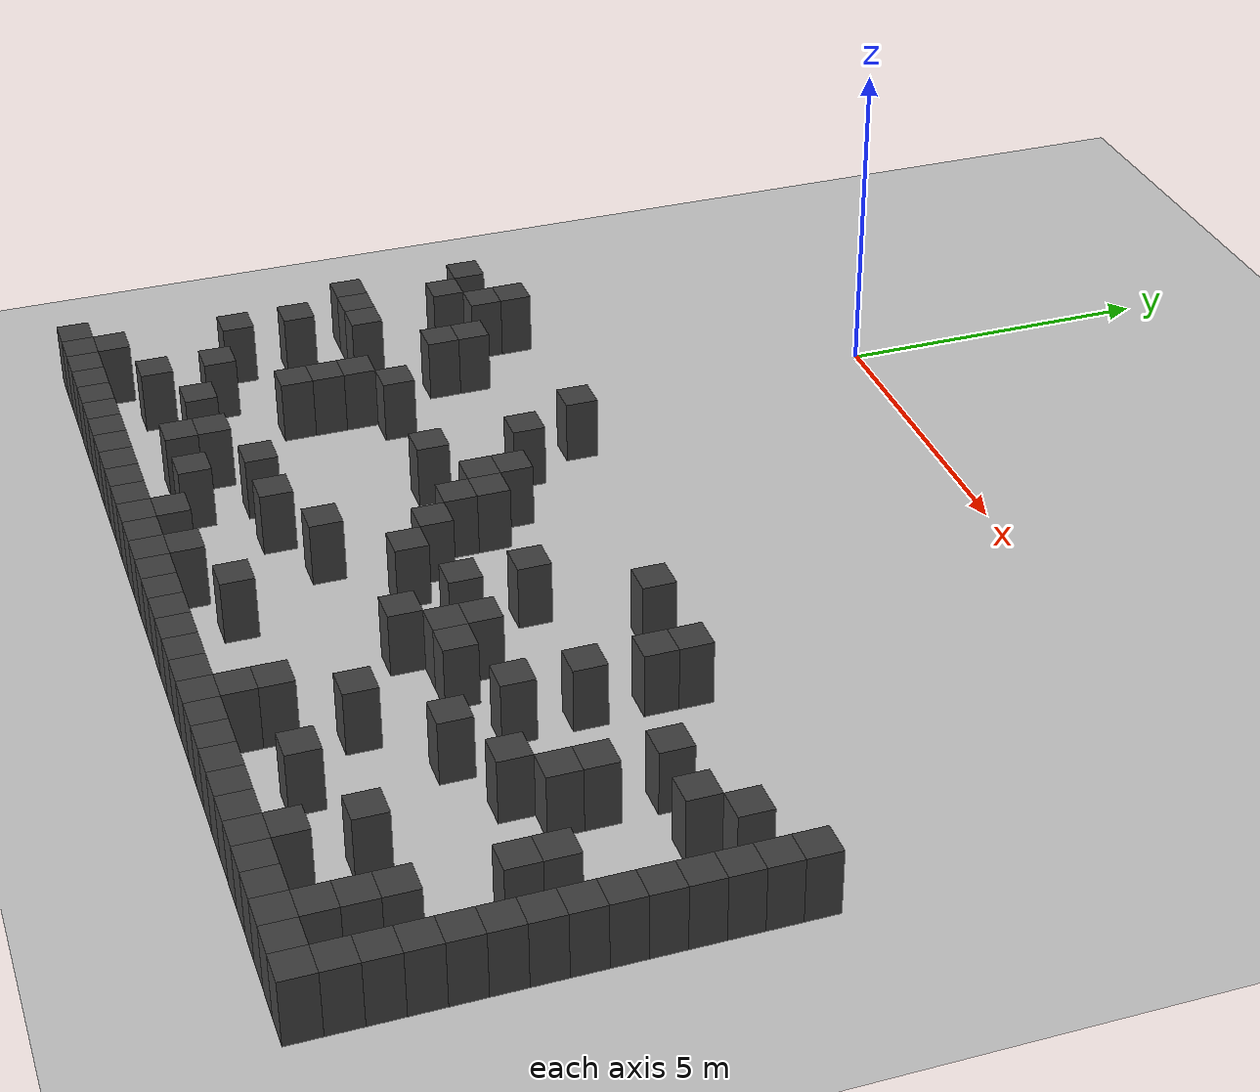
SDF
<sdf version="1.7">
 <world name="map_3158">
  <model name="ground_plane">
   <static>true</static>
   <link name="link">
    <collision name="collision">
     <geometry><plane><normal>0 0 1</normal><size>200 200</size></plane></geometry>
    </collision>
    <visual name="visual">
     <geometry><plane><normal>0 0 1</normal><size>200 200</size></plane></geometry>
     <material><ambient>0.8 0.8 0.8 1</ambient><diffuse>0.8 0.8 0.8 1</diffuse></material>
    </visual>
   </link>
  </model>
  <model name="maze_environment">
   <static>true</static>
   <link name="wall_370">
    <pose>-2.250 -5.250 0.500 0 0 0</pose>
    <collision name="col"><geometry><box><size>0.5 0.5 1.0</size></box></geometry></collision>
    <visual name="vis">
     <geometry><box><size>0.5 0.5 1.0</size></box></geometry>
     <material><ambient>0.15 0.15 0.15 1</ambient><diffuse>0.25 0.25 0.25 1</diffuse></material>
    </visual>
   </link>
   <link name="wall_371">
    <pose>1.250 -5.250 0.500 0 0 0</pose>
    <collision name="col"><geometry><box><size>0.5 0.5 1.0</size></box></geometry></collision>
    <visual name="vis">
     <geometry><box><size>0.5 0.5 1.0</size></box></geometry>
     <material><ambient>0.15 0.15 0.15 1</ambient><diffuse>0.25 0.25 0.25 1</diffuse></material>
    </visual>
   </link>
   <link name="wall_383">
    <pose>-3.250 -5.750 0.500 0 0 0</pose>
    <collision name="col"><geometry><box><size>0.5 0.5 1.0</size></box></geometry></collision>
    <visual name="vis">
     <geometry><box><size>0.5 0.5 1.0</size></box></geometry>
     <material><ambient>0.15 0.15 0.15 1</ambient><diffuse>0.25 0.25 0.25 1</diffuse></material>
    </visual>
   </link>
   <link name="wall_384">
    <pose>-2.250 -5.750 0.500 0 0 0</pose>
    <collision name="col"><geometry><box><size>0.5 0.5 1.0</size></box></geometry></collision>
    <visual name="vis">
     <geometry><box><size>0.5 0.5 1.0</size></box></geometry>
     <material><ambient>0.15 0.15 0.15 1</ambient><diffuse>0.25 0.25 0.25 1</diffuse></material>
    </visual>
   </link>
   <link name="wall_385">
    <pose>6.250 -5.750 0.500 0 0 0</pose>
    <collision name="col"><geometry><box><size>0.5 0.5 1.0</size></box></geometry></collision>
    <visual name="vis">
     <geometry><box><size>0.5 0.5 1.0</size></box></geometry>
     <material><ambient>0.15 0.15 0.15 1</ambient><diffuse>0.25 0.25 0.25 1</diffuse></material>
    </visual>
   </link>
   <link name="wall_386">
    <pose>7.750 -5.750 0.500 0 0 0</pose>
    <collision name="col"><geometry><box><size>0.5 0.5 1.0</size></box></geometry></collision>
    <visual name="vis">
     <geometry><box><size>0.5 0.5 1.0</size></box></geometry>
     <material><ambient>0.15 0.15 0.15 1</ambient><diffuse>0.25 0.25 0.25 1</diffuse></material>
    </visual>
   </link>
   <link name="wall_387">
    <pose>12.250 -5.750 0.500 0 0 0</pose>
    <collision name="col"><geometry><box><size>0.5 0.5 1.0</size></box></geometry></collision>
    <visual name="vis">
     <geometry><box><size>0.5 0.5 1.0</size></box></geometry>
     <material><ambient>0.15 0.15 0.15 1</ambient><diffuse>0.25 0.25 0.25 1</diffuse></material>
    </visual>
   </link>
   <link name="wall_391">
    <pose>-2.750 -6.250 0.500 0 0 0</pose>
    <collision name="col"><geometry><box><size>0.5 0.5 1.0</size></box></geometry></collision>
    <visual name="vis">
     <geometry><box><size>0.5 0.5 1.0</size></box></geometry>
     <material><ambient>0.15 0.15 0.15 1</ambient><diffuse>0.25 0.25 0.25 1</diffuse></material>
    </visual>
   </link>
   <link name="wall_392">
    <pose>-1.250 -6.250 0.500 0 0 0</pose>
    <collision name="col"><geometry><box><size>0.5 0.5 1.0</size></box></geometry></collision>
    <visual name="vis">
     <geometry><box><size>0.5 0.5 1.0</size></box></geometry>
     <material><ambient>0.15 0.15 0.15 1</ambient><diffuse>0.25 0.25 0.25 1</diffuse></material>
    </visual>
   </link>
   <link name="wall_393">
    <pose>1.750 -6.250 0.500 0 0 0</pose>
    <collision name="col"><geometry><box><size>0.5 0.5 1.0</size></box></geometry></collision>
    <visual name="vis">
     <geometry><box><size>0.5 0.5 1.0</size></box></geometry>
     <material><ambient>0.15 0.15 0.15 1</ambient><diffuse>0.25 0.25 0.25 1</diffuse></material>
    </visual>
   </link>
   <link name="wall_394">
    <pose>7.750 -6.250 0.500 0 0 0</pose>
    <collision name="col"><geometry><box><size>0.5 0.5 1.0</size></box></geometry></collision>
    <visual name="vis">
     <geometry><box><size>0.5 0.5 1.0</size></box></geometry>
     <material><ambient>0.15 0.15 0.15 1</ambient><diffuse>0.25 0.25 0.25 1</diffuse></material>
    </visual>
   </link>
   <link name="wall_395">
    <pose>11.250 -6.250 0.500 0 0 0</pose>
    <collision name="col"><geometry><box><size>0.5 0.5 1.0</size></box></geometry></collision>
    <visual name="vis">
     <geometry><box><size>0.5 0.5 1.0</size></box></geometry>
     <material><ambient>0.15 0.15 0.15 1</ambient><diffuse>0.25 0.25 0.25 1</diffuse></material>
    </visual>
   </link>
   <link name="wall_396">
    <pose>12.250 -6.250 0.500 0 0 0</pose>
    <collision name="col"><geometry><box><size>0.5 0.5 1.0</size></box></geometry></collision>
    <visual name="vis">
     <geometry><box><size>0.5 0.5 1.0</size></box></geometry>
     <material><ambient>0.15 0.15 0.15 1</ambient><diffuse>0.25 0.25 0.25 1</diffuse></material>
    </visual>
   </link>
   <link name="wall_403">
    <pose>-1.250 -6.750 0.500 0 0 0</pose>
    <collision name="col"><geometry><box><size>0.5 0.5 1.0</size></box></geometry></collision>
    <visual name="vis">
     <geometry><box><size>0.5 0.5 1.0</size></box></geometry>
     <material><ambient>0.15 0.15 0.15 1</ambient><diffuse>0.25 0.25 0.25 1</diffuse></material>
    </visual>
   </link>
   <link name="wall_404">
    <pose>2.750 -6.750 0.500 0 0 0</pose>
    <collision name="col"><geometry><box><size>0.5 0.5 1.0</size></box></geometry></collision>
    <visual name="vis">
     <geometry><box><size>0.5 0.5 1.0</size></box></geometry>
     <material><ambient>0.15 0.15 0.15 1</ambient><diffuse>0.25 0.25 0.25 1</diffuse></material>
    </visual>
   </link>
   <link name="wall_405">
    <pose>9.750 -6.750 0.500 0 0 0</pose>
    <collision name="col"><geometry><box><size>0.5 0.5 1.0</size></box></geometry></collision>
    <visual name="vis">
     <geometry><box><size>0.5 0.5 1.0</size></box></geometry>
     <material><ambient>0.15 0.15 0.15 1</ambient><diffuse>0.25 0.25 0.25 1</diffuse></material>
    </visual>
   </link>
   <link name="wall_406">
    <pose>10.750 -6.750 0.500 0 0 0</pose>
    <collision name="col"><geometry><box><size>0.5 0.5 1.0</size></box></geometry></collision>
    <visual name="vis">
     <geometry><box><size>0.5 0.5 1.0</size></box></geometry>
     <material><ambient>0.15 0.15 0.15 1</ambient><diffuse>0.25 0.25 0.25 1</diffuse></material>
    </visual>
   </link>
   <link name="wall_407">
    <pose>12.250 -6.750 0.500 0 0 0</pose>
    <collision name="col"><geometry><box><size>0.5 0.5 1.0</size></box></geometry></collision>
    <visual name="vis">
     <geometry><box><size>0.5 0.5 1.0</size></box></geometry>
     <material><ambient>0.15 0.15 0.15 1</ambient><diffuse>0.25 0.25 0.25 1</diffuse></material>
    </visual>
   </link>
   <link name="wall_415">
    <pose>2.750 -7.250 0.500 0 0 0</pose>
    <collision name="col"><geometry><box><size>0.5 0.5 1.0</size></box></geometry></collision>
    <visual name="vis">
     <geometry><box><size>0.5 0.5 1.0</size></box></geometry>
     <material><ambient>0.15 0.15 0.15 1</ambient><diffuse>0.25 0.25 0.25 1</diffuse></material>
    </visual>
   </link>
   <link name="wall_416">
    <pose>3.250 -7.250 0.500 0 0 0</pose>
    <collision name="col"><geometry><box><size>0.5 0.5 1.0</size></box></geometry></collision>
    <visual name="vis">
     <geometry><box><size>0.5 0.5 1.0</size></box></geometry>
     <material><ambient>0.15 0.15 0.15 1</ambient><diffuse>0.25 0.25 0.25 1</diffuse></material>
    </visual>
   </link>
   <link name="wall_417">
    <pose>5.250 -7.250 0.500 0 0 0</pose>
    <collision name="col"><geometry><box><size>0.5 0.5 1.0</size></box></geometry></collision>
    <visual name="vis">
     <geometry><box><size>0.5 0.5 1.0</size></box></geometry>
     <material><ambient>0.15 0.15 0.15 1</ambient><diffuse>0.25 0.25 0.25 1</diffuse></material>
    </visual>
   </link>
   <link name="wall_418">
    <pose>7.750 -7.250 0.500 0 0 0</pose>
    <collision name="col"><geometry><box><size>0.5 0.5 1.0</size></box></geometry></collision>
    <visual name="vis">
     <geometry><box><size>0.5 0.5 1.0</size></box></geometry>
     <material><ambient>0.15 0.15 0.15 1</ambient><diffuse>0.25 0.25 0.25 1</diffuse></material>
    </visual>
   </link>
   <link name="wall_419">
    <pose>12.250 -7.250 0.500 0 0 0</pose>
    <collision name="col"><geometry><box><size>0.5 0.5 1.0</size></box></geometry></collision>
    <visual name="vis">
     <geometry><box><size>0.5 0.5 1.0</size></box></geometry>
     <material><ambient>0.15 0.15 0.15 1</ambient><diffuse>0.25 0.25 0.25 1</diffuse></material>
    </visual>
   </link>
   <link name="wall_425">
    <pose>-3.250 -7.750 0.500 0 0 0</pose>
    <collision name="col"><geometry><box><size>0.5 0.5 1.0</size></box></geometry></collision>
    <visual name="vis">
     <geometry><box><size>0.5 0.5 1.0</size></box></geometry>
     <material><ambient>0.15 0.15 0.15 1</ambient><diffuse>0.25 0.25 0.25 1</diffuse></material>
    </visual>
   </link>
   <link name="wall_426">
    <pose>-2.750 -7.750 0.500 0 0 0</pose>
    <collision name="col"><geometry><box><size>0.5 0.5 1.0</size></box></geometry></collision>
    <visual name="vis">
     <geometry><box><size>0.5 0.5 1.0</size></box></geometry>
     <material><ambient>0.15 0.15 0.15 1</ambient><diffuse>0.25 0.25 0.25 1</diffuse></material>
    </visual>
   </link>
   <link name="wall_427">
    <pose>-2.250 -7.750 0.500 0 0 0</pose>
    <collision name="col"><geometry><box><size>0.5 0.5 1.0</size></box></geometry></collision>
    <visual name="vis">
     <geometry><box><size>0.5 0.5 1.0</size></box></geometry>
     <material><ambient>0.15 0.15 0.15 1</ambient><diffuse>0.25 0.25 0.25 1</diffuse></material>
    </visual>
   </link>
   <link name="wall_428">
    <pose>-0.250 -7.750 0.500 0 0 0</pose>
    <collision name="col"><geometry><box><size>0.5 0.5 1.0</size></box></geometry></collision>
    <visual name="vis">
     <geometry><box><size>0.5 0.5 1.0</size></box></geometry>
     <material><ambient>0.15 0.15 0.15 1</ambient><diffuse>0.25 0.25 0.25 1</diffuse></material>
    </visual>
   </link>
   <link name="wall_429">
    <pose>1.750 -7.750 0.500 0 0 0</pose>
    <collision name="col"><geometry><box><size>0.5 0.5 1.0</size></box></geometry></collision>
    <visual name="vis">
     <geometry><box><size>0.5 0.5 1.0</size></box></geometry>
     <material><ambient>0.15 0.15 0.15 1</ambient><diffuse>0.25 0.25 0.25 1</diffuse></material>
    </visual>
   </link>
   <link name="wall_430">
    <pose>3.250 -7.750 0.500 0 0 0</pose>
    <collision name="col"><geometry><box><size>0.5 0.5 1.0</size></box></geometry></collision>
    <visual name="vis">
     <geometry><box><size>0.5 0.5 1.0</size></box></geometry>
     <material><ambient>0.15 0.15 0.15 1</ambient><diffuse>0.25 0.25 0.25 1</diffuse></material>
    </visual>
   </link>
   <link name="wall_431">
    <pose>9.750 -7.750 0.500 0 0 0</pose>
    <collision name="col"><geometry><box><size>0.5 0.5 1.0</size></box></geometry></collision>
    <visual name="vis">
     <geometry><box><size>0.5 0.5 1.0</size></box></geometry>
     <material><ambient>0.15 0.15 0.15 1</ambient><diffuse>0.25 0.25 0.25 1</diffuse></material>
    </visual>
   </link>
   <link name="wall_432">
    <pose>12.250 -7.750 0.500 0 0 0</pose>
    <collision name="col"><geometry><box><size>0.5 0.5 1.0</size></box></geometry></collision>
    <visual name="vis">
     <geometry><box><size>0.5 0.5 1.0</size></box></geometry>
     <material><ambient>0.15 0.15 0.15 1</ambient><diffuse>0.25 0.25 0.25 1</diffuse></material>
    </visual>
   </link>
   <link name="wall_435">
    <pose>-0.750 -8.250 0.500 0 0 0</pose>
    <collision name="col"><geometry><box><size>0.5 0.5 1.0</size></box></geometry></collision>
    <visual name="vis">
     <geometry><box><size>0.5 0.5 1.0</size></box></geometry>
     <material><ambient>0.15 0.15 0.15 1</ambient><diffuse>0.25 0.25 0.25 1</diffuse></material>
    </visual>
   </link>
   <link name="wall_436">
    <pose>3.750 -8.250 0.500 0 0 0</pose>
    <collision name="col"><geometry><box><size>0.5 0.5 1.0</size></box></geometry></collision>
    <visual name="vis">
     <geometry><box><size>0.5 0.5 1.0</size></box></geometry>
     <material><ambient>0.15 0.15 0.15 1</ambient><diffuse>0.25 0.25 0.25 1</diffuse></material>
    </visual>
   </link>
   <link name="wall_437">
    <pose>5.250 -8.250 0.500 0 0 0</pose>
    <collision name="col"><geometry><box><size>0.5 0.5 1.0</size></box></geometry></collision>
    <visual name="vis">
     <geometry><box><size>0.5 0.5 1.0</size></box></geometry>
     <material><ambient>0.15 0.15 0.15 1</ambient><diffuse>0.25 0.25 0.25 1</diffuse></material>
    </visual>
   </link>
   <link name="wall_438">
    <pose>6.250 -8.250 0.500 0 0 0</pose>
    <collision name="col"><geometry><box><size>0.5 0.5 1.0</size></box></geometry></collision>
    <visual name="vis">
     <geometry><box><size>0.5 0.5 1.0</size></box></geometry>
     <material><ambient>0.15 0.15 0.15 1</ambient><diffuse>0.25 0.25 0.25 1</diffuse></material>
    </visual>
   </link>
   <link name="wall_439">
    <pose>7.750 -8.250 0.500 0 0 0</pose>
    <collision name="col"><geometry><box><size>0.5 0.5 1.0</size></box></geometry></collision>
    <visual name="vis">
     <geometry><box><size>0.5 0.5 1.0</size></box></geometry>
     <material><ambient>0.15 0.15 0.15 1</ambient><diffuse>0.25 0.25 0.25 1</diffuse></material>
    </visual>
   </link>
   <link name="wall_440">
    <pose>9.750 -8.250 0.500 0 0 0</pose>
    <collision name="col"><geometry><box><size>0.5 0.5 1.0</size></box></geometry></collision>
    <visual name="vis">
     <geometry><box><size>0.5 0.5 1.0</size></box></geometry>
     <material><ambient>0.15 0.15 0.15 1</ambient><diffuse>0.25 0.25 0.25 1</diffuse></material>
    </visual>
   </link>
   <link name="wall_441">
    <pose>12.250 -8.250 0.500 0 0 0</pose>
    <collision name="col"><geometry><box><size>0.5 0.5 1.0</size></box></geometry></collision>
    <visual name="vis">
     <geometry><box><size>0.5 0.5 1.0</size></box></geometry>
     <material><ambient>0.15 0.15 0.15 1</ambient><diffuse>0.25 0.25 0.25 1</diffuse></material>
    </visual>
   </link>
   <link name="wall_447">
    <pose>-2.750 -8.750 0.500 0 0 0</pose>
    <collision name="col"><geometry><box><size>0.5 0.5 1.0</size></box></geometry></collision>
    <visual name="vis">
     <geometry><box><size>0.5 0.5 1.0</size></box></geometry>
     <material><ambient>0.15 0.15 0.15 1</ambient><diffuse>0.25 0.25 0.25 1</diffuse></material>
    </visual>
   </link>
   <link name="wall_448">
    <pose>-0.750 -8.750 0.500 0 0 0</pose>
    <collision name="col"><geometry><box><size>0.5 0.5 1.0</size></box></geometry></collision>
    <visual name="vis">
     <geometry><box><size>0.5 0.5 1.0</size></box></geometry>
     <material><ambient>0.15 0.15 0.15 1</ambient><diffuse>0.25 0.25 0.25 1</diffuse></material>
    </visual>
   </link>
   <link name="wall_449">
    <pose>4.250 -8.750 0.500 0 0 0</pose>
    <collision name="col"><geometry><box><size>0.5 0.5 1.0</size></box></geometry></collision>
    <visual name="vis">
     <geometry><box><size>0.5 0.5 1.0</size></box></geometry>
     <material><ambient>0.15 0.15 0.15 1</ambient><diffuse>0.25 0.25 0.25 1</diffuse></material>
    </visual>
   </link>
   <link name="wall_450">
    <pose>6.250 -8.750 0.500 0 0 0</pose>
    <collision name="col"><geometry><box><size>0.5 0.5 1.0</size></box></geometry></collision>
    <visual name="vis">
     <geometry><box><size>0.5 0.5 1.0</size></box></geometry>
     <material><ambient>0.15 0.15 0.15 1</ambient><diffuse>0.25 0.25 0.25 1</diffuse></material>
    </visual>
   </link>
   <link name="wall_451">
    <pose>6.750 -8.750 0.500 0 0 0</pose>
    <collision name="col"><geometry><box><size>0.5 0.5 1.0</size></box></geometry></collision>
    <visual name="vis">
     <geometry><box><size>0.5 0.5 1.0</size></box></geometry>
     <material><ambient>0.15 0.15 0.15 1</ambient><diffuse>0.25 0.25 0.25 1</diffuse></material>
    </visual>
   </link>
   <link name="wall_452">
    <pose>9.250 -8.750 0.500 0 0 0</pose>
    <collision name="col"><geometry><box><size>0.5 0.5 1.0</size></box></geometry></collision>
    <visual name="vis">
     <geometry><box><size>0.5 0.5 1.0</size></box></geometry>
     <material><ambient>0.15 0.15 0.15 1</ambient><diffuse>0.25 0.25 0.25 1</diffuse></material>
    </visual>
   </link>
   <link name="wall_453">
    <pose>11.250 -8.750 0.500 0 0 0</pose>
    <collision name="col"><geometry><box><size>0.5 0.5 1.0</size></box></geometry></collision>
    <visual name="vis">
     <geometry><box><size>0.5 0.5 1.0</size></box></geometry>
     <material><ambient>0.15 0.15 0.15 1</ambient><diffuse>0.25 0.25 0.25 1</diffuse></material>
    </visual>
   </link>
   <link name="wall_454">
    <pose>12.250 -8.750 0.500 0 0 0</pose>
    <collision name="col"><geometry><box><size>0.5 0.5 1.0</size></box></geometry></collision>
    <visual name="vis">
     <geometry><box><size>0.5 0.5 1.0</size></box></geometry>
     <material><ambient>0.15 0.15 0.15 1</ambient><diffuse>0.25 0.25 0.25 1</diffuse></material>
    </visual>
   </link>
   <link name="wall_459">
    <pose>-0.750 -9.250 0.500 0 0 0</pose>
    <collision name="col"><geometry><box><size>0.5 0.5 1.0</size></box></geometry></collision>
    <visual name="vis">
     <geometry><box><size>0.5 0.5 1.0</size></box></geometry>
     <material><ambient>0.15 0.15 0.15 1</ambient><diffuse>0.25 0.25 0.25 1</diffuse></material>
    </visual>
   </link>
   <link name="wall_460">
    <pose>5.750 -9.250 0.500 0 0 0</pose>
    <collision name="col"><geometry><box><size>0.5 0.5 1.0</size></box></geometry></collision>
    <visual name="vis">
     <geometry><box><size>0.5 0.5 1.0</size></box></geometry>
     <material><ambient>0.15 0.15 0.15 1</ambient><diffuse>0.25 0.25 0.25 1</diffuse></material>
    </visual>
   </link>
   <link name="wall_461">
    <pose>8.250 -9.250 0.500 0 0 0</pose>
    <collision name="col"><geometry><box><size>0.5 0.5 1.0</size></box></geometry></collision>
    <visual name="vis">
     <geometry><box><size>0.5 0.5 1.0</size></box></geometry>
     <material><ambient>0.15 0.15 0.15 1</ambient><diffuse>0.25 0.25 0.25 1</diffuse></material>
    </visual>
   </link>
   <link name="wall_462">
    <pose>11.250 -9.250 0.500 0 0 0</pose>
    <collision name="col"><geometry><box><size>0.5 0.5 1.0</size></box></geometry></collision>
    <visual name="vis">
     <geometry><box><size>0.5 0.5 1.0</size></box></geometry>
     <material><ambient>0.15 0.15 0.15 1</ambient><diffuse>0.25 0.25 0.25 1</diffuse></material>
    </visual>
   </link>
   <link name="wall_463">
    <pose>12.250 -9.250 0.500 0 0 0</pose>
    <collision name="col"><geometry><box><size>0.5 0.5 1.0</size></box></geometry></collision>
    <visual name="vis">
     <geometry><box><size>0.5 0.5 1.0</size></box></geometry>
     <material><ambient>0.15 0.15 0.15 1</ambient><diffuse>0.25 0.25 0.25 1</diffuse></material>
    </visual>
   </link>
   <link name="wall_468">
    <pose>-2.750 -9.750 0.500 0 0 0</pose>
    <collision name="col"><geometry><box><size>0.5 0.5 1.0</size></box></geometry></collision>
    <visual name="vis">
     <geometry><box><size>0.5 0.5 1.0</size></box></geometry>
     <material><ambient>0.15 0.15 0.15 1</ambient><diffuse>0.25 0.25 0.25 1</diffuse></material>
    </visual>
   </link>
   <link name="wall_469">
    <pose>3.250 -9.750 0.500 0 0 0</pose>
    <collision name="col"><geometry><box><size>0.5 0.5 1.0</size></box></geometry></collision>
    <visual name="vis">
     <geometry><box><size>0.5 0.5 1.0</size></box></geometry>
     <material><ambient>0.15 0.15 0.15 1</ambient><diffuse>0.25 0.25 0.25 1</diffuse></material>
    </visual>
   </link>
   <link name="wall_470">
    <pose>12.250 -9.750 0.500 0 0 0</pose>
    <collision name="col"><geometry><box><size>0.5 0.5 1.0</size></box></geometry></collision>
    <visual name="vis">
     <geometry><box><size>0.5 0.5 1.0</size></box></geometry>
     <material><ambient>0.15 0.15 0.15 1</ambient><diffuse>0.25 0.25 0.25 1</diffuse></material>
    </visual>
   </link>
   <link name="wall_476">
    <pose>-1.750 -10.250 0.500 0 0 0</pose>
    <collision name="col"><geometry><box><size>0.5 0.5 1.0</size></box></geometry></collision>
    <visual name="vis">
     <geometry><box><size>0.5 0.5 1.0</size></box></geometry>
     <material><ambient>0.15 0.15 0.15 1</ambient><diffuse>0.25 0.25 0.25 1</diffuse></material>
    </visual>
   </link>
   <link name="wall_477">
    <pose>1.250 -10.250 0.500 0 0 0</pose>
    <collision name="col"><geometry><box><size>0.5 0.5 1.0</size></box></geometry></collision>
    <visual name="vis">
     <geometry><box><size>0.5 0.5 1.0</size></box></geometry>
     <material><ambient>0.15 0.15 0.15 1</ambient><diffuse>0.25 0.25 0.25 1</diffuse></material>
    </visual>
   </link>
   <link name="wall_478">
    <pose>2.250 -10.250 0.500 0 0 0</pose>
    <collision name="col"><geometry><box><size>0.5 0.5 1.0</size></box></geometry></collision>
    <visual name="vis">
     <geometry><box><size>0.5 0.5 1.0</size></box></geometry>
     <material><ambient>0.15 0.15 0.15 1</ambient><diffuse>0.25 0.25 0.25 1</diffuse></material>
    </visual>
   </link>
   <link name="wall_479">
    <pose>7.250 -10.250 0.500 0 0 0</pose>
    <collision name="col"><geometry><box><size>0.5 0.5 1.0</size></box></geometry></collision>
    <visual name="vis">
     <geometry><box><size>0.5 0.5 1.0</size></box></geometry>
     <material><ambient>0.15 0.15 0.15 1</ambient><diffuse>0.25 0.25 0.25 1</diffuse></material>
    </visual>
   </link>
   <link name="wall_480">
    <pose>12.250 -10.250 0.500 0 0 0</pose>
    <collision name="col"><geometry><box><size>0.5 0.5 1.0</size></box></geometry></collision>
    <visual name="vis">
     <geometry><box><size>0.5 0.5 1.0</size></box></geometry>
     <material><ambient>0.15 0.15 0.15 1</ambient><diffuse>0.25 0.25 0.25 1</diffuse></material>
    </visual>
   </link>
   <link name="wall_486">
    <pose>-0.750 -10.750 0.500 0 0 0</pose>
    <collision name="col"><geometry><box><size>0.5 0.5 1.0</size></box></geometry></collision>
    <visual name="vis">
     <geometry><box><size>0.5 0.5 1.0</size></box></geometry>
     <material><ambient>0.15 0.15 0.15 1</ambient><diffuse>0.25 0.25 0.25 1</diffuse></material>
    </visual>
   </link>
   <link name="wall_487">
    <pose>0.250 -10.750 0.500 0 0 0</pose>
    <collision name="col"><geometry><box><size>0.5 0.5 1.0</size></box></geometry></collision>
    <visual name="vis">
     <geometry><box><size>0.5 0.5 1.0</size></box></geometry>
     <material><ambient>0.15 0.15 0.15 1</ambient><diffuse>0.25 0.25 0.25 1</diffuse></material>
    </visual>
   </link>
   <link name="wall_488">
    <pose>9.750 -10.750 0.500 0 0 0</pose>
    <collision name="col"><geometry><box><size>0.5 0.5 1.0</size></box></geometry></collision>
    <visual name="vis">
     <geometry><box><size>0.5 0.5 1.0</size></box></geometry>
     <material><ambient>0.15 0.15 0.15 1</ambient><diffuse>0.25 0.25 0.25 1</diffuse></material>
    </visual>
   </link>
   <link name="wall_489">
    <pose>11.250 -10.750 0.500 0 0 0</pose>
    <collision name="col"><geometry><box><size>0.5 0.5 1.0</size></box></geometry></collision>
    <visual name="vis">
     <geometry><box><size>0.5 0.5 1.0</size></box></geometry>
     <material><ambient>0.15 0.15 0.15 1</ambient><diffuse>0.25 0.25 0.25 1</diffuse></material>
    </visual>
   </link>
   <link name="wall_490">
    <pose>12.250 -10.750 0.500 0 0 0</pose>
    <collision name="col"><geometry><box><size>0.5 0.5 1.0</size></box></geometry></collision>
    <visual name="vis">
     <geometry><box><size>0.5 0.5 1.0</size></box></geometry>
     <material><ambient>0.15 0.15 0.15 1</ambient><diffuse>0.25 0.25 0.25 1</diffuse></material>
    </visual>
   </link>
   <link name="wall_494">
    <pose>-1.750 -11.250 0.500 0 0 0</pose>
    <collision name="col"><geometry><box><size>0.5 0.5 1.0</size></box></geometry></collision>
    <visual name="vis">
     <geometry><box><size>0.5 0.5 1.0</size></box></geometry>
     <material><ambient>0.15 0.15 0.15 1</ambient><diffuse>0.25 0.25 0.25 1</diffuse></material>
    </visual>
   </link>
   <link name="wall_495">
    <pose>0.250 -11.250 0.500 0 0 0</pose>
    <collision name="col"><geometry><box><size>0.5 0.5 1.0</size></box></geometry></collision>
    <visual name="vis">
     <geometry><box><size>0.5 0.5 1.0</size></box></geometry>
     <material><ambient>0.15 0.15 0.15 1</ambient><diffuse>0.25 0.25 0.25 1</diffuse></material>
    </visual>
   </link>
   <link name="wall_496">
    <pose>1.250 -11.250 0.500 0 0 0</pose>
    <collision name="col"><geometry><box><size>0.5 0.5 1.0</size></box></geometry></collision>
    <visual name="vis">
     <geometry><box><size>0.5 0.5 1.0</size></box></geometry>
     <material><ambient>0.15 0.15 0.15 1</ambient><diffuse>0.25 0.25 0.25 1</diffuse></material>
    </visual>
   </link>
   <link name="wall_497">
    <pose>4.250 -11.250 0.500 0 0 0</pose>
    <collision name="col"><geometry><box><size>0.5 0.5 1.0</size></box></geometry></collision>
    <visual name="vis">
     <geometry><box><size>0.5 0.5 1.0</size></box></geometry>
     <material><ambient>0.15 0.15 0.15 1</ambient><diffuse>0.25 0.25 0.25 1</diffuse></material>
    </visual>
   </link>
   <link name="wall_498">
    <pose>6.750 -11.250 0.500 0 0 0</pose>
    <collision name="col"><geometry><box><size>0.5 0.5 1.0</size></box></geometry></collision>
    <visual name="vis">
     <geometry><box><size>0.5 0.5 1.0</size></box></geometry>
     <material><ambient>0.15 0.15 0.15 1</ambient><diffuse>0.25 0.25 0.25 1</diffuse></material>
    </visual>
   </link>
   <link name="wall_499">
    <pose>8.250 -11.250 0.500 0 0 0</pose>
    <collision name="col"><geometry><box><size>0.5 0.5 1.0</size></box></geometry></collision>
    <visual name="vis">
     <geometry><box><size>0.5 0.5 1.0</size></box></geometry>
     <material><ambient>0.15 0.15 0.15 1</ambient><diffuse>0.25 0.25 0.25 1</diffuse></material>
    </visual>
   </link>
   <link name="wall_500">
    <pose>11.250 -11.250 0.500 0 0 0</pose>
    <collision name="col"><geometry><box><size>0.5 0.5 1.0</size></box></geometry></collision>
    <visual name="vis">
     <geometry><box><size>0.5 0.5 1.0</size></box></geometry>
     <material><ambient>0.15 0.15 0.15 1</ambient><diffuse>0.25 0.25 0.25 1</diffuse></material>
    </visual>
   </link>
   <link name="wall_501">
    <pose>12.250 -11.250 0.500 0 0 0</pose>
    <collision name="col"><geometry><box><size>0.5 0.5 1.0</size></box></geometry></collision>
    <visual name="vis">
     <geometry><box><size>0.5 0.5 1.0</size></box></geometry>
     <material><ambient>0.15 0.15 0.15 1</ambient><diffuse>0.25 0.25 0.25 1</diffuse></material>
    </visual>
   </link>
   <link name="wall_504">
    <pose>-2.750 -11.750 0.500 0 0 0</pose>
    <collision name="col"><geometry><box><size>0.5 0.5 1.0</size></box></geometry></collision>
    <visual name="vis">
     <geometry><box><size>0.5 0.5 1.0</size></box></geometry>
     <material><ambient>0.15 0.15 0.15 1</ambient><diffuse>0.25 0.25 0.25 1</diffuse></material>
    </visual>
   </link>
   <link name="wall_505">
    <pose>2.250 -11.750 0.500 0 0 0</pose>
    <collision name="col"><geometry><box><size>0.5 0.5 1.0</size></box></geometry></collision>
    <visual name="vis">
     <geometry><box><size>0.5 0.5 1.0</size></box></geometry>
     <material><ambient>0.15 0.15 0.15 1</ambient><diffuse>0.25 0.25 0.25 1</diffuse></material>
    </visual>
   </link>
   <link name="wall_506">
    <pose>3.250 -11.750 0.500 0 0 0</pose>
    <collision name="col"><geometry><box><size>0.5 0.5 1.0</size></box></geometry></collision>
    <visual name="vis">
     <geometry><box><size>0.5 0.5 1.0</size></box></geometry>
     <material><ambient>0.15 0.15 0.15 1</ambient><diffuse>0.25 0.25 0.25 1</diffuse></material>
    </visual>
   </link>
   <link name="wall_507">
    <pose>6.750 -11.750 0.500 0 0 0</pose>
    <collision name="col"><geometry><box><size>0.5 0.5 1.0</size></box></geometry></collision>
    <visual name="vis">
     <geometry><box><size>0.5 0.5 1.0</size></box></geometry>
     <material><ambient>0.15 0.15 0.15 1</ambient><diffuse>0.25 0.25 0.25 1</diffuse></material>
    </visual>
   </link>
   <link name="wall_508">
    <pose>9.750 -11.750 0.500 0 0 0</pose>
    <collision name="col"><geometry><box><size>0.5 0.5 1.0</size></box></geometry></collision>
    <visual name="vis">
     <geometry><box><size>0.5 0.5 1.0</size></box></geometry>
     <material><ambient>0.15 0.15 0.15 1</ambient><diffuse>0.25 0.25 0.25 1</diffuse></material>
    </visual>
   </link>
   <link name="wall_509">
    <pose>11.250 -11.750 0.500 0 0 0</pose>
    <collision name="col"><geometry><box><size>0.5 0.5 1.0</size></box></geometry></collision>
    <visual name="vis">
     <geometry><box><size>0.5 0.5 1.0</size></box></geometry>
     <material><ambient>0.15 0.15 0.15 1</ambient><diffuse>0.25 0.25 0.25 1</diffuse></material>
    </visual>
   </link>
   <link name="wall_510">
    <pose>12.250 -11.750 0.500 0 0 0</pose>
    <collision name="col"><geometry><box><size>0.5 0.5 1.0</size></box></geometry></collision>
    <visual name="vis">
     <geometry><box><size>0.5 0.5 1.0</size></box></geometry>
     <material><ambient>0.15 0.15 0.15 1</ambient><diffuse>0.25 0.25 0.25 1</diffuse></material>
    </visual>
   </link>
   <link name="wall_529">
    <pose>-3.250 -12.250 0.500 0 0 0</pose>
    <collision name="col"><geometry><box><size>0.5 0.5 1.0</size></box></geometry></collision>
    <visual name="vis">
     <geometry><box><size>0.5 0.5 1.0</size></box></geometry>
     <material><ambient>0.15 0.15 0.15 1</ambient><diffuse>0.25 0.25 0.25 1</diffuse></material>
    </visual>
   </link>
   <link name="wall_530">
    <pose>-2.750 -12.250 0.500 0 0 0</pose>
    <collision name="col"><geometry><box><size>0.5 0.5 1.0</size></box></geometry></collision>
    <visual name="vis">
     <geometry><box><size>0.5 0.5 1.0</size></box></geometry>
     <material><ambient>0.15 0.15 0.15 1</ambient><diffuse>0.25 0.25 0.25 1</diffuse></material>
    </visual>
   </link>
   <link name="wall_531">
    <pose>-2.250 -12.250 0.500 0 0 0</pose>
    <collision name="col"><geometry><box><size>0.5 0.5 1.0</size></box></geometry></collision>
    <visual name="vis">
     <geometry><box><size>0.5 0.5 1.0</size></box></geometry>
     <material><ambient>0.15 0.15 0.15 1</ambient><diffuse>0.25 0.25 0.25 1</diffuse></material>
    </visual>
   </link>
   <link name="wall_532">
    <pose>-1.750 -12.250 0.500 0 0 0</pose>
    <collision name="col"><geometry><box><size>0.5 0.5 1.0</size></box></geometry></collision>
    <visual name="vis">
     <geometry><box><size>0.5 0.5 1.0</size></box></geometry>
     <material><ambient>0.15 0.15 0.15 1</ambient><diffuse>0.25 0.25 0.25 1</diffuse></material>
    </visual>
   </link>
   <link name="wall_533">
    <pose>-1.250 -12.250 0.500 0 0 0</pose>
    <collision name="col"><geometry><box><size>0.5 0.5 1.0</size></box></geometry></collision>
    <visual name="vis">
     <geometry><box><size>0.5 0.5 1.0</size></box></geometry>
     <material><ambient>0.15 0.15 0.15 1</ambient><diffuse>0.25 0.25 0.25 1</diffuse></material>
    </visual>
   </link>
   <link name="wall_534">
    <pose>-0.750 -12.250 0.500 0 0 0</pose>
    <collision name="col"><geometry><box><size>0.5 0.5 1.0</size></box></geometry></collision>
    <visual name="vis">
     <geometry><box><size>0.5 0.5 1.0</size></box></geometry>
     <material><ambient>0.15 0.15 0.15 1</ambient><diffuse>0.25 0.25 0.25 1</diffuse></material>
    </visual>
   </link>
   <link name="wall_535">
    <pose>-0.250 -12.250 0.500 0 0 0</pose>
    <collision name="col"><geometry><box><size>0.5 0.5 1.0</size></box></geometry></collision>
    <visual name="vis">
     <geometry><box><size>0.5 0.5 1.0</size></box></geometry>
     <material><ambient>0.15 0.15 0.15 1</ambient><diffuse>0.25 0.25 0.25 1</diffuse></material>
    </visual>
   </link>
   <link name="wall_536">
    <pose>0.250 -12.250 0.500 0 0 0</pose>
    <collision name="col"><geometry><box><size>0.5 0.5 1.0</size></box></geometry></collision>
    <visual name="vis">
     <geometry><box><size>0.5 0.5 1.0</size></box></geometry>
     <material><ambient>0.15 0.15 0.15 1</ambient><diffuse>0.25 0.25 0.25 1</diffuse></material>
    </visual>
   </link>
   <link name="wall_537">
    <pose>0.750 -12.250 0.500 0 0 0</pose>
    <collision name="col"><geometry><box><size>0.5 0.5 1.0</size></box></geometry></collision>
    <visual name="vis">
     <geometry><box><size>0.5 0.5 1.0</size></box></geometry>
     <material><ambient>0.15 0.15 0.15 1</ambient><diffuse>0.25 0.25 0.25 1</diffuse></material>
    </visual>
   </link>
   <link name="wall_538">
    <pose>1.250 -12.250 0.500 0 0 0</pose>
    <collision name="col"><geometry><box><size>0.5 0.5 1.0</size></box></geometry></collision>
    <visual name="vis">
     <geometry><box><size>0.5 0.5 1.0</size></box></geometry>
     <material><ambient>0.15 0.15 0.15 1</ambient><diffuse>0.25 0.25 0.25 1</diffuse></material>
    </visual>
   </link>
   <link name="wall_539">
    <pose>1.750 -12.250 0.500 0 0 0</pose>
    <collision name="col"><geometry><box><size>0.5 0.5 1.0</size></box></geometry></collision>
    <visual name="vis">
     <geometry><box><size>0.5 0.5 1.0</size></box></geometry>
     <material><ambient>0.15 0.15 0.15 1</ambient><diffuse>0.25 0.25 0.25 1</diffuse></material>
    </visual>
   </link>
   <link name="wall_540">
    <pose>2.250 -12.250 0.500 0 0 0</pose>
    <collision name="col"><geometry><box><size>0.5 0.5 1.0</size></box></geometry></collision>
    <visual name="vis">
     <geometry><box><size>0.5 0.5 1.0</size></box></geometry>
     <material><ambient>0.15 0.15 0.15 1</ambient><diffuse>0.25 0.25 0.25 1</diffuse></material>
    </visual>
   </link>
   <link name="wall_541">
    <pose>2.750 -12.250 0.500 0 0 0</pose>
    <collision name="col"><geometry><box><size>0.5 0.5 1.0</size></box></geometry></collision>
    <visual name="vis">
     <geometry><box><size>0.5 0.5 1.0</size></box></geometry>
     <material><ambient>0.15 0.15 0.15 1</ambient><diffuse>0.25 0.25 0.25 1</diffuse></material>
    </visual>
   </link>
   <link name="wall_542">
    <pose>3.250 -12.250 0.500 0 0 0</pose>
    <collision name="col"><geometry><box><size>0.5 0.5 1.0</size></box></geometry></collision>
    <visual name="vis">
     <geometry><box><size>0.5 0.5 1.0</size></box></geometry>
     <material><ambient>0.15 0.15 0.15 1</ambient><diffuse>0.25 0.25 0.25 1</diffuse></material>
    </visual>
   </link>
   <link name="wall_543">
    <pose>3.750 -12.250 0.500 0 0 0</pose>
    <collision name="col"><geometry><box><size>0.5 0.5 1.0</size></box></geometry></collision>
    <visual name="vis">
     <geometry><box><size>0.5 0.5 1.0</size></box></geometry>
     <material><ambient>0.15 0.15 0.15 1</ambient><diffuse>0.25 0.25 0.25 1</diffuse></material>
    </visual>
   </link>
   <link name="wall_544">
    <pose>4.250 -12.250 0.500 0 0 0</pose>
    <collision name="col"><geometry><box><size>0.5 0.5 1.0</size></box></geometry></collision>
    <visual name="vis">
     <geometry><box><size>0.5 0.5 1.0</size></box></geometry>
     <material><ambient>0.15 0.15 0.15 1</ambient><diffuse>0.25 0.25 0.25 1</diffuse></material>
    </visual>
   </link>
   <link name="wall_545">
    <pose>4.750 -12.250 0.500 0 0 0</pose>
    <collision name="col"><geometry><box><size>0.5 0.5 1.0</size></box></geometry></collision>
    <visual name="vis">
     <geometry><box><size>0.5 0.5 1.0</size></box></geometry>
     <material><ambient>0.15 0.15 0.15 1</ambient><diffuse>0.25 0.25 0.25 1</diffuse></material>
    </visual>
   </link>
   <link name="wall_546">
    <pose>5.250 -12.250 0.500 0 0 0</pose>
    <collision name="col"><geometry><box><size>0.5 0.5 1.0</size></box></geometry></collision>
    <visual name="vis">
     <geometry><box><size>0.5 0.5 1.0</size></box></geometry>
     <material><ambient>0.15 0.15 0.15 1</ambient><diffuse>0.25 0.25 0.25 1</diffuse></material>
    </visual>
   </link>
   <link name="wall_547">
    <pose>5.750 -12.250 0.500 0 0 0</pose>
    <collision name="col"><geometry><box><size>0.5 0.5 1.0</size></box></geometry></collision>
    <visual name="vis">
     <geometry><box><size>0.5 0.5 1.0</size></box></geometry>
     <material><ambient>0.15 0.15 0.15 1</ambient><diffuse>0.25 0.25 0.25 1</diffuse></material>
    </visual>
   </link>
   <link name="wall_548">
    <pose>6.250 -12.250 0.500 0 0 0</pose>
    <collision name="col"><geometry><box><size>0.5 0.5 1.0</size></box></geometry></collision>
    <visual name="vis">
     <geometry><box><size>0.5 0.5 1.0</size></box></geometry>
     <material><ambient>0.15 0.15 0.15 1</ambient><diffuse>0.25 0.25 0.25 1</diffuse></material>
    </visual>
   </link>
   <link name="wall_549">
    <pose>6.750 -12.250 0.500 0 0 0</pose>
    <collision name="col"><geometry><box><size>0.5 0.5 1.0</size></box></geometry></collision>
    <visual name="vis">
     <geometry><box><size>0.5 0.5 1.0</size></box></geometry>
     <material><ambient>0.15 0.15 0.15 1</ambient><diffuse>0.25 0.25 0.25 1</diffuse></material>
    </visual>
   </link>
   <link name="wall_550">
    <pose>7.250 -12.250 0.500 0 0 0</pose>
    <collision name="col"><geometry><box><size>0.5 0.5 1.0</size></box></geometry></collision>
    <visual name="vis">
     <geometry><box><size>0.5 0.5 1.0</size></box></geometry>
     <material><ambient>0.15 0.15 0.15 1</ambient><diffuse>0.25 0.25 0.25 1</diffuse></material>
    </visual>
   </link>
   <link name="wall_551">
    <pose>7.750 -12.250 0.500 0 0 0</pose>
    <collision name="col"><geometry><box><size>0.5 0.5 1.0</size></box></geometry></collision>
    <visual name="vis">
     <geometry><box><size>0.5 0.5 1.0</size></box></geometry>
     <material><ambient>0.15 0.15 0.15 1</ambient><diffuse>0.25 0.25 0.25 1</diffuse></material>
    </visual>
   </link>
   <link name="wall_552">
    <pose>8.250 -12.250 0.500 0 0 0</pose>
    <collision name="col"><geometry><box><size>0.5 0.5 1.0</size></box></geometry></collision>
    <visual name="vis">
     <geometry><box><size>0.5 0.5 1.0</size></box></geometry>
     <material><ambient>0.15 0.15 0.15 1</ambient><diffuse>0.25 0.25 0.25 1</diffuse></material>
    </visual>
   </link>
   <link name="wall_553">
    <pose>8.750 -12.250 0.500 0 0 0</pose>
    <collision name="col"><geometry><box><size>0.5 0.5 1.0</size></box></geometry></collision>
    <visual name="vis">
     <geometry><box><size>0.5 0.5 1.0</size></box></geometry>
     <material><ambient>0.15 0.15 0.15 1</ambient><diffuse>0.25 0.25 0.25 1</diffuse></material>
    </visual>
   </link>
   <link name="wall_554">
    <pose>9.250 -12.250 0.500 0 0 0</pose>
    <collision name="col"><geometry><box><size>0.5 0.5 1.0</size></box></geometry></collision>
    <visual name="vis">
     <geometry><box><size>0.5 0.5 1.0</size></box></geometry>
     <material><ambient>0.15 0.15 0.15 1</ambient><diffuse>0.25 0.25 0.25 1</diffuse></material>
    </visual>
   </link>
   <link name="wall_555">
    <pose>9.750 -12.250 0.500 0 0 0</pose>
    <collision name="col"><geometry><box><size>0.5 0.5 1.0</size></box></geometry></collision>
    <visual name="vis">
     <geometry><box><size>0.5 0.5 1.0</size></box></geometry>
     <material><ambient>0.15 0.15 0.15 1</ambient><diffuse>0.25 0.25 0.25 1</diffuse></material>
    </visual>
   </link>
   <link name="wall_556">
    <pose>10.250 -12.250 0.500 0 0 0</pose>
    <collision name="col"><geometry><box><size>0.5 0.5 1.0</size></box></geometry></collision>
    <visual name="vis">
     <geometry><box><size>0.5 0.5 1.0</size></box></geometry>
     <material><ambient>0.15 0.15 0.15 1</ambient><diffuse>0.25 0.25 0.25 1</diffuse></material>
    </visual>
   </link>
   <link name="wall_557">
    <pose>10.750 -12.250 0.500 0 0 0</pose>
    <collision name="col"><geometry><box><size>0.5 0.5 1.0</size></box></geometry></collision>
    <visual name="vis">
     <geometry><box><size>0.5 0.5 1.0</size></box></geometry>
     <material><ambient>0.15 0.15 0.15 1</ambient><diffuse>0.25 0.25 0.25 1</diffuse></material>
    </visual>
   </link>
   <link name="wall_558">
    <pose>11.250 -12.250 0.500 0 0 0</pose>
    <collision name="col"><geometry><box><size>0.5 0.5 1.0</size></box></geometry></collision>
    <visual name="vis">
     <geometry><box><size>0.5 0.5 1.0</size></box></geometry>
     <material><ambient>0.15 0.15 0.15 1</ambient><diffuse>0.25 0.25 0.25 1</diffuse></material>
    </visual>
   </link>
   <link name="wall_559">
    <pose>11.750 -12.250 0.500 0 0 0</pose>
    <collision name="col"><geometry><box><size>0.5 0.5 1.0</size></box></geometry></collision>
    <visual name="vis">
     <geometry><box><size>0.5 0.5 1.0</size></box></geometry>
     <material><ambient>0.15 0.15 0.15 1</ambient><diffuse>0.25 0.25 0.25 1</diffuse></material>
    </visual>
   </link>
   <link name="wall_560">
    <pose>12.250 -12.250 0.500 0 0 0</pose>
    <collision name="col"><geometry><box><size>0.5 0.5 1.0</size></box></geometry></collision>
    <visual name="vis">
     <geometry><box><size>0.5 0.5 1.0</size></box></geometry>
     <material><ambient>0.15 0.15 0.15 1</ambient><diffuse>0.25 0.25 0.25 1</diffuse></material>
    </visual>
   </link>
   <link name="goal_zone">
    <pose>11.750 -11.750 0.005 0 0 0</pose>
    <visual name="vis">
     <geometry><box><size>0.45 0.45 0.01</size></box></geometry>
     <material>
      <ambient>1.0 0.0 0.0 1</ambient>
      <diffuse>1.0 0.0 0.0 1</diffuse>
      <emissive>0.60 0.00 0.00 1</emissive>
     </material>
    </visual>
   </link>
  </model>
 </world>
</sdf>
